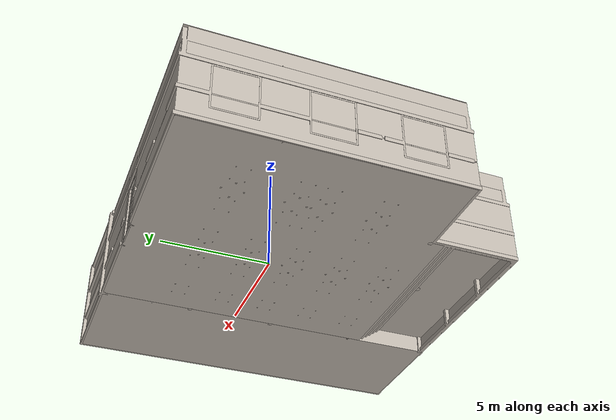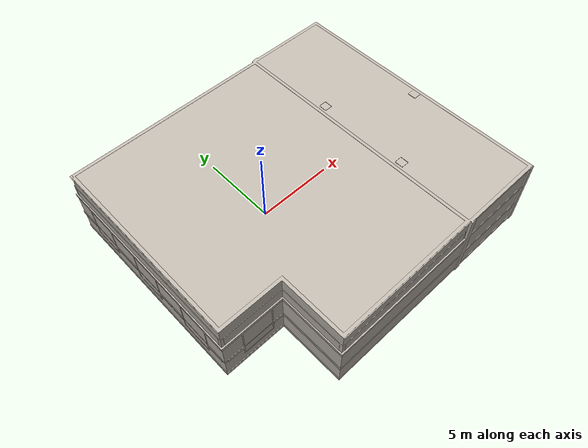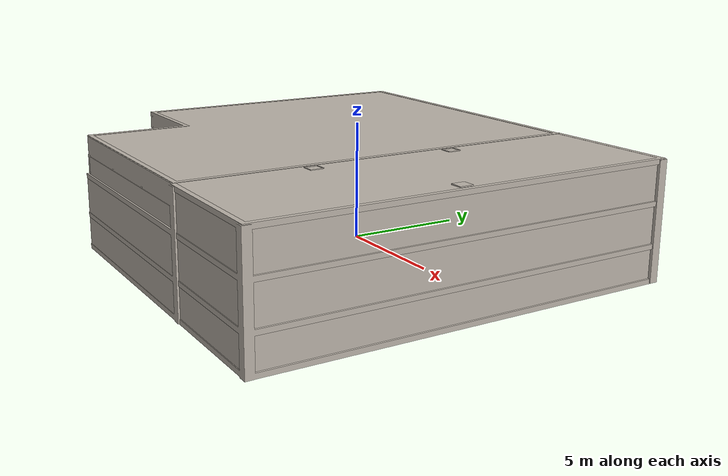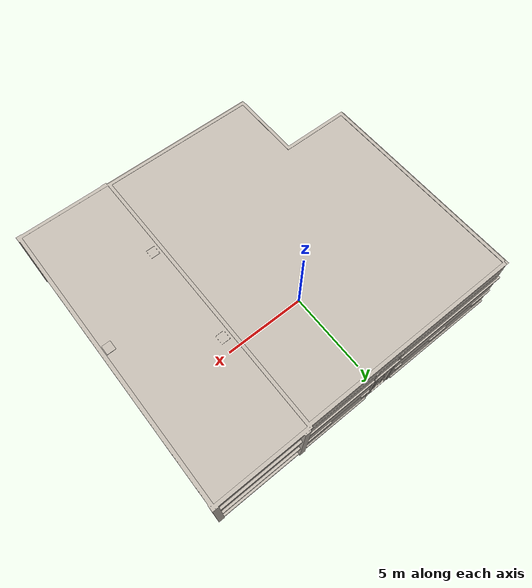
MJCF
<mujoco model="resto_ni_teo">
  <compiler angle="radian" eulerseq="xyz"/>
  <default>
    <default class="visual">
      <geom group="2" type="mesh" contype="0" conaffinity="0"/>
    </default>
    <default class="collision">
      <geom group="3" type="mesh"/>
    </default>
  </default>
  <asset>
    <texture type="2d" name="material_0" file="material_0.png"/>
    <material name="material_0" texture="material_0" specular="0.4000000000000001" shininess="0.001"/>
    <texture type="2d" name="material_1" file="material_1.png"/>
    <material name="material_1" texture="material_1" specular="0.4000000000000001" shininess="0.001"/>
    <texture type="2d" name="material_2" file="material_2.png"/>
    <material name="material_2" texture="material_2" specular="0.4000000000000001" shininess="0.001"/>
    <texture type="2d" name="material_3" file="material_3.png"/>
    <material name="material_3" texture="material_3" specular="0.4000000000000001" shininess="0.001"/>
    <texture type="2d" name="material_4" file="material_4.png"/>
    <material name="material_4" texture="material_4" specular="0.4000000000000001" shininess="0.001"/>
    <texture type="2d" name="material_5" file="material_5.png"/>
    <material name="material_5" texture="material_5" specular="0.4000000000000001" shininess="0.001"/>
    <texture type="2d" name="material_6" file="material_6.png"/>
    <material name="material_6" texture="material_6" specular="0.4000000000000001" shininess="0.001"/>
    <texture type="2d" name="material_7" file="material_7.png"/>
    <material name="material_7" texture="material_7" specular="0.4000000000000001" shininess="0.001"/>
    <texture type="2d" name="material_8" file="material_8.png"/>
    <material name="material_8" texture="material_8" specular="0.4000000000000001" shininess="0.001"/>
    <texture type="2d" name="material_9" file="material_9.png"/>
    <material name="material_9" texture="material_9" specular="0.4000000000000001" shininess="0.001"/>
    <texture type="2d" name="material_10" file="material_10.png"/>
    <material name="material_10" texture="material_10" specular="0.4000000000000001" shininess="0.001"/>
    <texture type="2d" name="material_11" file="material_11.png"/>
    <material name="material_11" texture="material_11" specular="0.4000000000000001" shininess="0.001"/>
    <texture type="2d" name="material_12" file="material_12.png"/>
    <material name="material_12" texture="material_12" specular="0.4000000000000001" shininess="0.001"/>
    <texture type="2d" name="material_13" file="material_13.png"/>
    <material name="material_13" texture="material_13" specular="0.4000000000000001" shininess="0.001"/>
    <texture type="2d" name="material_14" file="material_14.png"/>
    <material name="material_14" texture="material_14" specular="0.4000000000000001" shininess="0.001"/>
    <texture type="2d" name="material_15" file="material_15.png"/>
    <material name="material_15" texture="material_15" specular="0.4000000000000001" shininess="0.001"/>
    <texture type="2d" name="material_16" file="material_16.png"/>
    <material name="material_16" texture="material_16" specular="0.4000000000000001" shininess="0.001"/>
    <texture type="2d" name="material_17" file="material_17.png"/>
    <material name="material_17" texture="material_17" specular="0.4000000000000001" shininess="0.001"/>
    <texture type="2d" name="material_18" file="material_18.png"/>
    <material name="material_18" texture="material_18" specular="0.4000000000000001" shininess="0.001"/>
    <texture type="2d" name="material_19" file="material_19.png"/>
    <material name="material_19" texture="material_19" specular="0.4000000000000001" shininess="0.001"/>
    <material name="material_20" specular="0.4000000000000001" shininess="0.001" rgba="1.00000000 0.33725490 0.01176471 1.0"/>
    <texture type="2d" name="material_21" file="material_21.png"/>
    <material name="material_21" texture="material_21" specular="0.4000000000000001" shininess="0.001"/>
    <mesh file="resto_ni_teo_0.obj"/>
    <mesh file="resto_ni_teo_1.obj"/>
    <mesh file="resto_ni_teo_2.obj"/>
    <mesh file="resto_ni_teo_3.obj"/>
    <mesh file="resto_ni_teo_4.obj"/>
    <mesh file="resto_ni_teo_5.obj"/>
    <mesh file="resto_ni_teo_6.obj"/>
    <mesh file="resto_ni_teo_7.obj"/>
    <mesh file="resto_ni_teo_8.obj"/>
    <mesh file="resto_ni_teo_9.obj"/>
    <mesh file="resto_ni_teo_10.obj"/>
    <mesh file="resto_ni_teo_11.obj"/>
    <mesh file="resto_ni_teo_12.obj"/>
    <mesh file="resto_ni_teo_13.obj"/>
    <mesh file="resto_ni_teo_14.obj"/>
    <mesh file="resto_ni_teo_15.obj"/>
    <mesh file="resto_ni_teo_16.obj"/>
    <mesh file="resto_ni_teo_17.obj"/>
    <mesh file="resto_ni_teo_18.obj"/>
    <mesh file="resto_ni_teo_19.obj"/>
    <mesh file="resto_ni_teo_20.obj"/>
    <mesh file="resto_ni_teo_21.obj"/>
    <mesh file="resto_ni_teo_collision_0.obj"/>
    <mesh file="resto_ni_teo_collision_1.obj"/>
    <mesh file="resto_ni_teo_collision_2.obj"/>
    <mesh file="resto_ni_teo_collision_3.obj"/>
    <mesh file="resto_ni_teo_collision_4.obj"/>
    <mesh file="resto_ni_teo_collision_5.obj"/>
    <mesh file="resto_ni_teo_collision_6.obj"/>
    <mesh file="resto_ni_teo_collision_7.obj"/>
    <mesh file="resto_ni_teo_collision_8.obj"/>
  </asset>
  <worldbody>
    <body name="resto_ni_teo" euler="1.57 0 0">
      <geom mesh="resto_ni_teo_0" material="material_21" class="visual"/>
      <geom mesh="resto_ni_teo_1" material="material_20" class="visual"/>
      <geom mesh="resto_ni_teo_2" material="material_19" class="visual"/>
      <geom mesh="resto_ni_teo_3" material="material_18" class="visual"/>
      <geom mesh="resto_ni_teo_4" material="material_17" class="visual"/>
      <geom mesh="resto_ni_teo_5" material="material_16" class="visual"/>
      <geom mesh="resto_ni_teo_6" material="material_15" class="visual"/>
      <geom mesh="resto_ni_teo_7" material="material_14" class="visual"/>
      <geom mesh="resto_ni_teo_8" material="material_13" class="visual"/>
      <geom mesh="resto_ni_teo_9" material="material_12" class="visual"/>
      <geom mesh="resto_ni_teo_10" material="material_11" class="visual"/>
      <geom mesh="resto_ni_teo_11" material="material_10" class="visual"/>
      <geom mesh="resto_ni_teo_12" material="material_9" class="visual"/>
      <geom mesh="resto_ni_teo_13" material="material_8" class="visual"/>
      <geom mesh="resto_ni_teo_14" material="material_7" class="visual"/>
      <geom mesh="resto_ni_teo_15" material="material_6" class="visual"/>
      <geom mesh="resto_ni_teo_16" material="material_5" class="visual"/>
      <geom mesh="resto_ni_teo_17" material="material_4" class="visual"/>
      <geom mesh="resto_ni_teo_18" material="material_3" class="visual"/>
      <geom mesh="resto_ni_teo_19" material="material_2" class="visual"/>
      <geom mesh="resto_ni_teo_20" material="material_1" class="visual"/>
      <geom mesh="resto_ni_teo_21" material="material_0" class="visual"/>
      <geom mesh="resto_ni_teo_collision_0" rgba="0.21780854827323004 0.29251395008047165 0.0011575418104383672 1" class="collision"/>
      <geom mesh="resto_ni_teo_collision_1" rgba="0.6822918929237399 0.45227021508834486 0.9845716661754207 1" class="collision"/>
      <geom mesh="resto_ni_teo_collision_2" rgba="0.40159974477064464 0.43212472014321635 0.49937948409624733 1" class="collision"/>
      <geom mesh="resto_ni_teo_collision_3" rgba="0.9531622163701082 0.47148362277774825 0.06014855197990787 1" class="collision"/>
      <geom mesh="resto_ni_teo_collision_4" rgba="0.21003718054378573 0.17426904765525275 0.16492627655616932 1" class="collision"/>
      <geom mesh="resto_ni_teo_collision_5" rgba="0.683503945082818 0.827249762779814 0.008402180641021495 1" class="collision"/>
      <geom mesh="resto_ni_teo_collision_6" rgba="0.2007012484152949 0.7650831074367971 0.5396539706855654 1" class="collision"/>
      <geom mesh="resto_ni_teo_collision_7" rgba="0.0026281361184082863 0.47343178661170615 0.7762831332753088 1" class="collision"/>
      <geom mesh="resto_ni_teo_collision_8" rgba="0.3837449045816195 0.4504550944632897 0.19360745259175027 1" class="collision"/>
    </body>
  </worldbody>
</mujoco>
